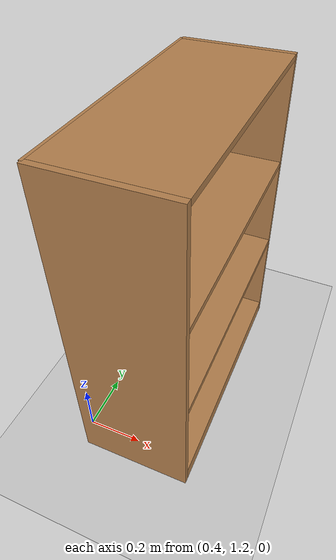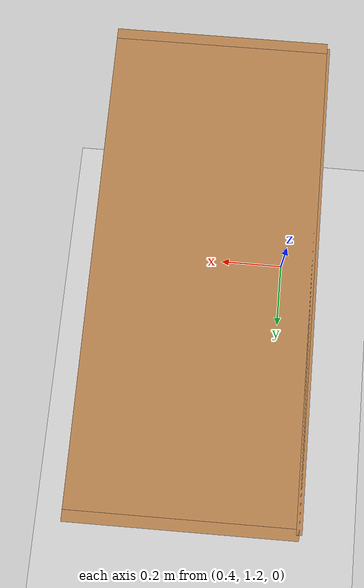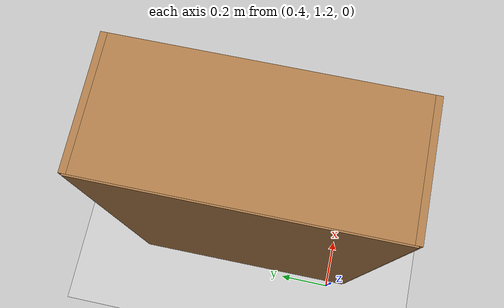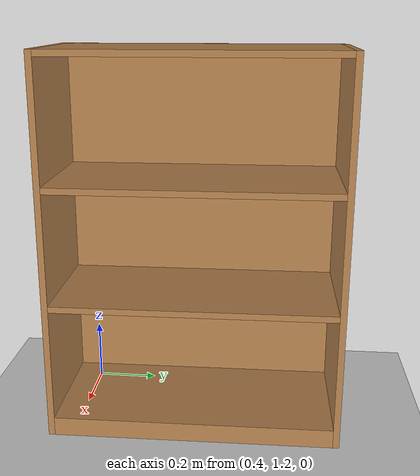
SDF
<sdf version="1.7">
 <world name="default">
  <light name="sun" type="directional">
   <cast_shadows>0</cast_shadows>
   <pose>0 0 10 0 -0 0</pose>
   <diffuse>0.8 0.8 0.8 1</diffuse>
   <specular>0.2 0.2 0.2 1</specular>
   <attenuation>
    <range>1000</range>
    <constant>0.9</constant>
    <linear>0.01</linear>
    <quadratic>0.001</quadratic>
   </attenuation>
   <direction>-0.5 0.1 -0.9</direction>
   <spot><inner_angle>0</inner_angle><outer_angle>0</outer_angle><falloff>0</falloff></spot>
  </light>
  <model name="ground_plane">
   <static>1</static>
   <link name="link">
    <collision name="collision">
     <geometry><plane><normal>0 0 1</normal><size>1000 1000</size></plane></geometry>
     <surface>
      <contact><collide_bitmask>65535</collide_bitmask></contact>
      <friction><ode><mu>100</mu><mu2>50</mu2></ode></friction>
     </surface>
    </collision>
    <visual name="visual">
     <cast_shadows>0</cast_shadows>
     <geometry><plane><normal>0 0 1</normal><size>100 100</size></plane></geometry>
     <material>
      <script><uri>file://media/materials/scripts/gazebo.material</uri><name>Gazebo/Grey</name></script>
     </material>
    </visual>
   </link>
  </model>
  <gravity>0 0 -9.8</gravity>
  <physics type="ode">
   <max_step_size>0.001</max_step_size>
   <real_time_factor>1</real_time_factor>
   <real_time_update_rate>1000</real_time_update_rate>
  </physics>
  <scene>
   <ambient>0.4 0.4 0.4 1</ambient>
   <background>0.7 0.7 0.7 1</background>
   <shadows>0</shadows>
   <origin_visual>0</origin_visual>
  </scene>
  <audio><device>default</device></audio>
  <spherical_coordinates>
   <surface_model>EARTH_WGS84</surface_model>
   <latitude_deg>0</latitude_deg>
   <longitude_deg>0</longitude_deg>
   <elevation>0</elevation>
   <heading_deg>0</heading_deg>
  </spherical_coordinates>
  <model name="bookshelf">
   <static>1</static>
   <link name="link">
    <inertial><mass>1</mass></inertial>
    <visual name="visual1">
     <pose>0 0.005 0.6 0 -0 0</pose>
     <geometry><box><size>0.9 0.01 1.2</size></box></geometry>
     <material>
      <script><uri>file://media/materials/scripts/gazebo.material</uri><name>Gazebo/Wood</name></script>
     </material>
    </visual>
    <visual name="visual2">
     <pose>0.45 -0.195 0.6 0 -0 0</pose>
     <geometry><box><size>0.02 0.4 1.2</size></box></geometry>
     <material>
      <script><uri>file://media/materials/scripts/gazebo.material</uri><name>Gazebo/Wood</name></script>
     </material>
    </visual>
    <visual name="visual3">
     <pose>-0.45 -0.195 0.6 0 -0 0</pose>
     <geometry><box><size>0.02 0.4 1.2</size></box></geometry>
     <material>
      <script><uri>file://media/materials/scripts/gazebo.material</uri><name>Gazebo/Wood</name></script>
     </material>
    </visual>
    <visual name="visual4">
     <pose>0 -0.195 0.03 0 -0 0</pose>
     <geometry><box><size>0.88 0.4 0.06</size></box></geometry>
     <material>
      <script><uri>file://media/materials/scripts/gazebo.material</uri><name>Gazebo/Wood</name></script>
     </material>
    </visual>
    <visual name="visual5">
     <pose>0 -0.195 1.19 0 -0 0</pose>
     <geometry><box><size>0.88 0.4 0.02</size></box></geometry>
     <material>
      <script><uri>file://media/materials/scripts/gazebo.material</uri><name>Gazebo/Wood</name></script>
     </material>
    </visual>
    <visual name="visual6">
     <pose>0 -0.195 0.43 0 -0 0</pose>
     <geometry><box><size>0.88 0.4 0.02</size></box></geometry>
     <material>
      <script><uri>file://media/materials/scripts/gazebo.material</uri><name>Gazebo/Wood</name></script>
     </material>
    </visual>
    <visual name="visual7">
     <pose>0 -0.195 0.8 0 -0 0</pose>
     <geometry><box><size>0.88 0.4 0.02</size></box></geometry>
     <material>
      <script><uri>file://media/materials/scripts/gazebo.material</uri><name>Gazebo/Wood</name></script>
     </material>
    </visual>
   </link>
   <pose>0.43 1.58 0 0 -0 1.57611</pose>
  </model>
  <magnetic_field>6e-06 2.3e-05 -4.2e-05</magnetic_field>
  <atmosphere type="adiabatic"/>
  <plugin name="gazebo_ros_state" filename="libgazebo_ros_state.so">
   <ros><namespace>/gazebo</namespace></ros>
   <update_rate>1.0</update_rate>
  </plugin>
 </world>
</sdf>
